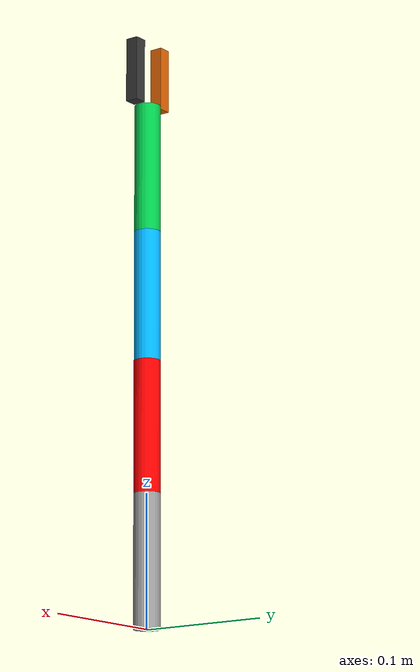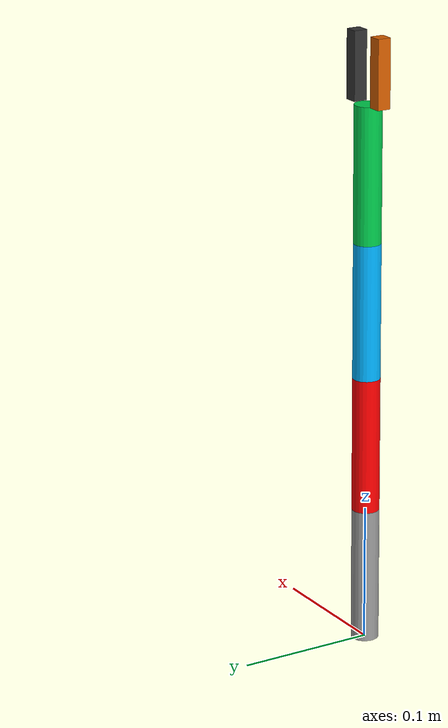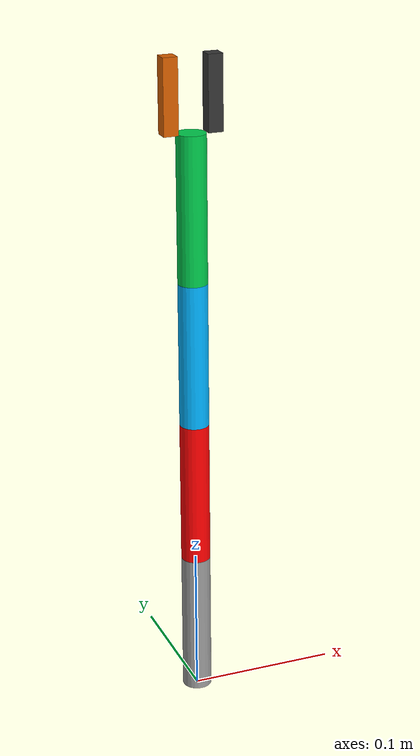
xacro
<?xml version="1.0"?>
<robot xmlns:xacro="http://www.ros.org/wiki/xacro" name="3dof_robot">

  <xacro:include filename="$(find robot_description)/urdf/robot_gazebo.xacro"/>
  <xacro:include filename="$(find robot_description)/urdf/robot_control.xacro"/>
  <xacro:include filename="$(find robot_description)/urdf/robot_materials.xacro"/>

  <!-- Link Parameters -->
  <xacro:property name="r1" value="0.01"/>
  <xacro:property name="r2" value="0.01"/>
  <xacro:property name="r3" value="0.01"/>
  <xacro:property name="r4" value="0.01"/>

  <xacro:property name="l1" value="0.1"/>
  <xacro:property name="l2" value="0.1"/>
  <xacro:property name="l3" value="0.1"/>
  <xacro:property name="l4" value="0.1"/>

  <xacro:property name="m1" value="1.0"/>
  <xacro:property name="m2" value="0.8"/>
  <xacro:property name="m3" value="0.6"/>
  <xacro:property name="m4" value="0.5"/>

  <!-- Inertia macro for solid cylinder along Z-axis -->
  <xacro:macro name="inertial_cylinder_z" params="mass radius length">
    <inertial>
      <origin xyz="0 0 ${length/2}" rpy="0 0 0"/>
      <mass value="${mass}"/>
      <inertia
        ixx="${(1/12.0)*mass*(3*radius*radius + length*length)}"
        iyy="${(1/12.0)*mass*(3*radius*radius + length*length)}"
        izz="${0.5*mass*radius*radius}"
        ixy="0" ixz="0" iyz="0"/>
    </inertial>
  </xacro:macro>

  <!-- Cylindrical Link Macro -->
  <xacro:macro name="cylinder_link" params="name mass radius length color">
    <link name="${name}">
      <xacro:inertial_cylinder_z mass="${mass}" radius="${radius}" length="${length}"/>
      <visual>
        <origin xyz="0 0 ${length/2}" rpy="0 0 0"/>
        <geometry>
          <cylinder radius="${radius}" length="${length}"/>
        </geometry>
        <material><color rgba="${color}"/></material>
      </visual>
      <collision>
        <origin xyz="0 0 ${length/2}" rpy="0 0 0"/>
        <geometry>
          <cylinder radius="${radius}" length="${length}"/>
        </geometry>
      </collision>
    </link>
  </xacro:macro>

  <!-- World and Link 1 (Fixed) -->
  <link name="world"/>
  <xacro:cylinder_link name="link_1" mass="${m1}" radius="${r1}" length="${l1}" color="0.6 0.6 0.6 1.0"/>
  <joint name="world_to_link_1" type="fixed">
    <parent link="world"/>
    <child link="link_1"/>
    <origin xyz="0 0 0" rpy="0 0 0"/>
  </joint>

  <!-- Link 2 -->
  <xacro:cylinder_link name="link_2" mass="${m2}" radius="${r2}" length="${l2}" color="1.0 0.0 0.0 1.0"/>
  <joint name="link_1_to_link_2" type="revolute">
    <parent link="link_1"/>
    <child link="link_2"/>
    <origin xyz="0 0 ${l1}" rpy="0 0 0"/>
    <axis xyz="0 1 0"/>
    <limit lower="-1.57" upper="1.57" effort="50" velocity="1.0"/>
  </joint>

  <!-- Link 3 -->
  <xacro:cylinder_link name="link_3" mass="${m3}" radius="${r3}" length="${l3}" color="0.0 0.7 1.0 1.0"/>
  <joint name="link_2_to_link_3" type="revolute">
    <parent link="link_2"/>
    <child link="link_3"/>
    <origin xyz="0 0 ${l2}" rpy="0 0 0"/>
    <axis xyz="0 1 0"/>
    <limit lower="-1.57" upper="1.57" effort="50" velocity="1.0"/>
  </joint>

  <!-- Link 4 -->
  <xacro:cylinder_link name="link_4" mass="${m4}" radius="${r4}" length="${l4}" color="0.0 0.8 0.3 1.0"/>
  <joint name="link_3_to_link_4" type="revolute">
    <parent link="link_3"/>
    <child link="link_4"/>
    <origin xyz="0 0 ${l3}" rpy="0 0 0"/>
    <axis xyz="0 1 0"/>
    <limit lower="-1.57" upper="1.57" effort="50" velocity="1.0"/>
  </joint>

  <!-- Gripper: Two Fingers Only -->
  <link name="gripper_base">

    <!-- Left Finger -->
    <visual>
      <origin xyz="0.015 0 0.025" rpy="0 0 0"/>
      <geometry><box size="0.01 0.01 0.05"/></geometry>
      <material><color rgba="0.2 0.2 0.2 1.0"/></material>
    </visual>
    <collision>
      <origin xyz="0.015 0 0.025" rpy="0 0 0"/>
      <geometry><box size="0.01 0.01 0.05"/></geometry>
    </collision>

    <inertial>
      <origin xyz="0.015 0 0.025" rpy="0 0 0"/>
      <mass value="0.025"/>
      <inertia ixx="1e-5" iyy="1e-5" izz="1e-5" ixy="0" ixz="0" iyz="0"/>
    </inertial>

    <!-- Right Finger -->
    <visual>
      <origin xyz="-0.015 0 0.025" rpy="0 0 0"/>
      <geometry><box size="0.01 0.01 0.05"/></geometry>
    </visual>
    <collision>
      <origin xyz="-0.015 0 0.025" rpy="0 0 0"/>
      <geometry><box size="0.01 0.01 0.05"/></geometry>
    </collision>

    <inertial>
      <origin xyz="-0.015 0 0.025" rpy="0 0 0"/>
      <mass value="0.025"/>
      <inertia ixx="1e-5" iyy="1e-5" izz="1e-5" ixy="0" ixz="0" iyz="0"/>
    </inertial>
  </link>

  <joint name="link_4_to_gripper" type="fixed">
    <parent link="link_4"/>
    <child link="gripper_base"/>
    <origin xyz="0 0 ${l4}" rpy="0 0 0"/>
  </joint>

</robot>
